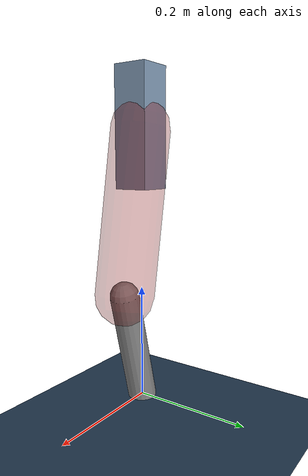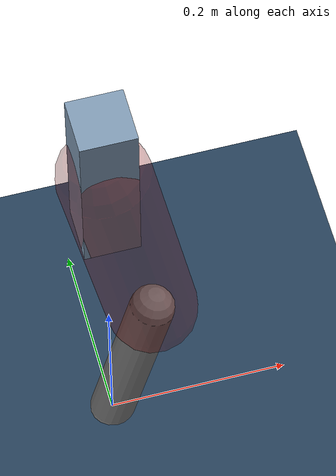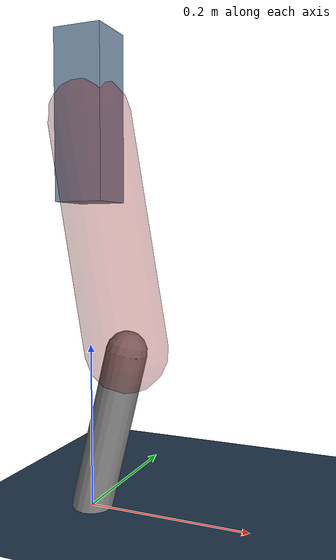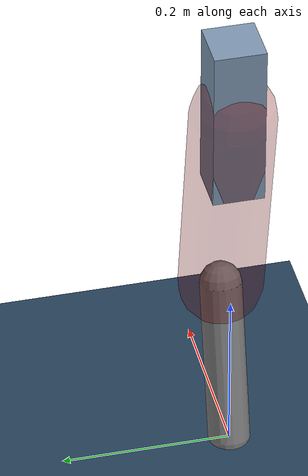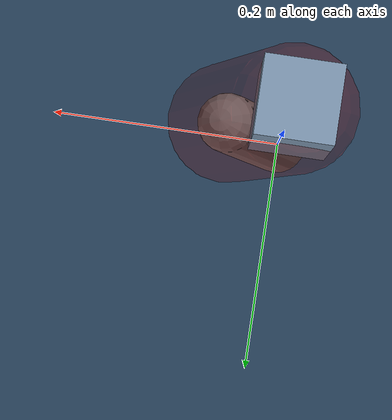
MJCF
<mujoco model="Hopper2D">
	<compiler inertiafromgeom="true" angle="radian" />
	<option timestep="0.001" integrator="implicit" cone="elliptic" solver="Newton" tolerance="1e-10" />

	<default>
		<geom contype="1" conaffinity="1" condim="3" friction="2 0.005 0.0001" solref="0.005 1" />
		<joint limited="true" damping="0.1" />
	</default>

	<asset>
		<texture name="skybox" type="skybox" builtin="gradient" rgb1=".4 .6 .8" rgb2="0 0 0" width="800" height="800" />
		<texture name="grid" type="2d" builtin="checker" rgb1=".1 .2 .3" rgb2=".2 .3 .4" width="300" height="300" mark="edge" markrgb=".2 .3 .4" />
		<material name="ground" texture="grid" texrepeat="1 1" texuniform="true" reflectance="0.1" />
		<material name="leg" rgba="0.5 0.6 0.7 1" />
	</asset>

	<worldbody>

		<geom name="floor" type="plane" size="5 5 0.25" material="ground" />

		<light directional="false" diffuse="0.8 0.8 0.8" specular="0.3 0.3 0.3" pos="0 0 2" dir="0 0 -1" />
		<light mode="targetbodycom" target="base" directional="false" diffuse="0.8 0.8 0.8" specular="0.3 0.3 0.3" pos="0 0 2" dir="0 0 -1" />

		<camera name="fixed" pos="0 -2 1" xyaxes="1 0 0 0 0 1" />
		<camera name="tracking" mode="trackcom" pos="0 -3 1" />

		<body name="root" pos="0 0 0.47265216496931445">
			<joint name="slide_x" type="slide" axis="1 0 0" range="-100 100" />
			<joint name="slide_z" type="slide" axis="0 0 1" range="0 10" />

			<body name="base" pos="0 0 0">
				<geom name="torso" type="box" size="0.03 0.03 0.1" mass="3.414" material="leg" />

				<body name="link1" pos="0 0 0" euler="0 1.398851716740533 0">
					<joint type="hinge" axis="0 -1 0" pos="0 0 0" name="hinge1" limited="true" range="-3.14 3.14" stiffness="0" damping="0.1" />
					<geom name="thigh" type="capsule" fromto="0 0 0 0.2814723626529455 0 0" size="0.05" rgba="0.5 0 0 0.3" mass="0.9390281428976583" />

					<body name="link2" pos="0.2814723626529455 0 0" euler="0 0.4136775165304169 0">
						<joint type="hinge" axis="0 -1 0" pos="0 0 0" name="hinge2" limited="true" range="-3.14 3.14" stiffness="0" damping="0.1" />
						<geom name="shank" type="capsule" fromto="0 0 0 0.20117980231636895 0 0" size="0.025" mass="0.40186182208473203" />

					</body>
				</body>
			</body>
		</body>
	</worldbody>

	<actuator>
		<motor name="torque1" joint="hinge1" ctrlrange="-204.09667436445937 204.09667436445937" ctrllimited="true" gear="1" />
		<motor name="torque2" joint="hinge2" ctrlrange="-106.07947950887107 106.07947950887107" ctrllimited="true" gear="1" />
	</actuator>
</mujoco>
